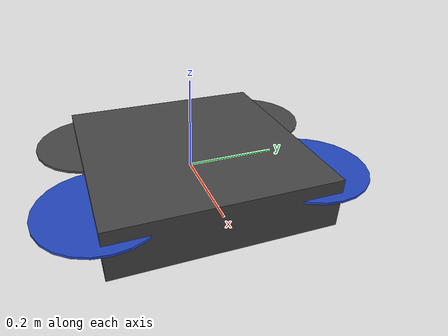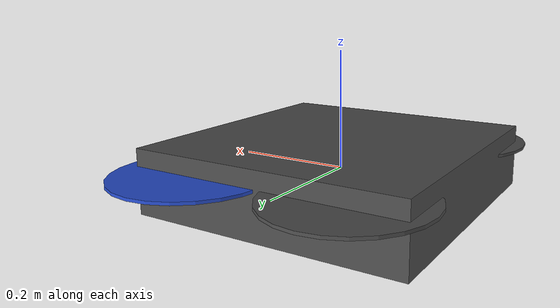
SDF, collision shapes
<?xml version='1.0'?>
<sdf version='1.6'>
  <model name='sd5-with-camera'>
    <link name='/imu_link'>
      <pose frame=''>0 0 0 0 -0 0</pose>
      <inertial>
        <pose frame=''>0 0 0 0 -0 0</pose>
        <mass>0.015</mass>
        <inertia>
          <ixx>1e-05</ixx>
          <ixy>0</ixy>
          <ixz>0</ixz>
          <iyy>1e-05</iyy>
          <iyz>0</iyz>
          <izz>1e-05</izz>
        </inertia>
      </inertial>
      <self_collide>0</self_collide>
      <kinematic>0</kinematic>
    </link>
    <link name='base_link'>
      <pose frame=''>0 0 0 0 -0 0</pose>
      <inertial>
        <pose frame=''>0 0 0 0 -0 0</pose>
        <mass>1.5</mass>
        <inertia>
          <ixx>0.0347563</ixx>
          <ixy>0</ixy>
          <ixz>0</ixz>
          <iyy>0.0458929</iyy>
          <iyz>0</iyz>
          <izz>0.0977</izz>
        </inertia>
      </inertial>
      <self_collide>0</self_collide>
      <kinematic>0</kinematic>
      <velocity_decay/>
      <visual name='base_link_inertia_visual'>
        <pose frame=''>0 0 0 0 -0 0</pose>
        <geometry>
          <mesh>
            <scale>1 1 1</scale>
            <uri>model://rotors_description/meshes/iris.stl</uri>
          </mesh>
        </geometry>
        <material>
          <script>
            <name>Gazebo/DarkGrey</name>
            <uri>file://media/materials/scripts/gazebo.material</uri>
          </script>
          <ambient>0.175 0.175 0.175 1</ambient>
          <diffuse>0.175 0.175 0.175 1</diffuse>
          <specular>0.175 0.175 0.175 1</specular>
          <emissive>0 0 0 1</emissive>
        </material>
        <transparency>0</transparency>
        <cast_shadows>1</cast_shadows>
      </visual>
      <collision name='base_link_inertia_collision'>
        <laser_retro>0</laser_retro>
        <max_contacts>10</max_contacts>
        <pose frame=''>0 0 0 0 -0 0</pose>
        <geometry>
          <box>
            <size>0.47 0.47 0.11</size>
          </box>
        </geometry>
        <surface>
          <friction>
            <ode>
              <mu>1</mu>
              <mu2>1</mu2>
              <fdir1>0 0 0</fdir1>
              <slip1>0</slip1>
              <slip2>0</slip2>
            </ode>
            <torsional>
              <coefficient>1</coefficient>
              <patch_radius>0</patch_radius>
              <surface_radius>0</surface_radius>
              <use_patch_radius>1</use_patch_radius>
              <ode>
                <slip>0</slip>
              </ode>
            </torsional>
          </friction>
          <bounce>
            <restitution_coefficient>0</restitution_coefficient>
            <threshold>1e+06</threshold>
          </bounce>
          <contact>
            <collide_without_contact>0</collide_without_contact>
            <collide_without_contact_bitmask>1</collide_without_contact_bitmask>
            <collide_bitmask>1</collide_bitmask>
            <ode>
              <soft_cfm>0</soft_cfm>
              <soft_erp>0.2</soft_erp>
              <kp>1e+13</kp>
              <kd>1</kd>
              <max_vel>0</max_vel>
              <min_depth>0.001</min_depth>
            </ode>
            <bullet>
              <split_impulse>1</split_impulse>
              <split_impulse_penetration_threshold>-0.01</split_impulse_penetration_threshold>
              <soft_cfm>0</soft_cfm>
              <soft_erp>0.2</soft_erp>
              <kp>1e+13</kp>
              <kd>1</kd>
            </bullet>
          </contact>
        </surface>
      </collision>
    </link>
    <link name='rotor_0'>
      <pose frame=''>0.13 -0.22 0.023 0 -0 0</pose>
      <inertial>
        <pose frame=''>0 0 0 0 -0 0</pose>
        <mass>0.005</mass>
        <inertia>
          <ixx>9.75e-07</ixx>
          <ixy>0</ixy>
          <ixz>0</ixz>
          <iyy>0.000273104</iyy>
          <iyz>0</iyz>
          <izz>0.000274004</izz>
        </inertia>
      </inertial>
      <self_collide>0</self_collide>
      <kinematic>0</kinematic>
      <velocity_decay/>
      <visual name='rotor_0_visual'>
        <pose frame=''>0 0 0 0 -0 0</pose>
        <geometry>
          <mesh>
            <scale>1 1 1</scale>
            <uri>model://rotors_description/meshes/iris_prop_ccw.dae</uri>
          </mesh>
        </geometry>
        <material>
          <script>
            <name>Gazebo/Blue</name>
            <uri>file://media/materials/scripts/gazebo.material</uri>
          </script>
          <ambient>0 0 1 1</ambient>
          <diffuse>0 0 1 1</diffuse>
          <specular>0.1 0.1 0.1 1</specular>
          <emissive>0 0 0 1</emissive>
        </material>
        <transparency>0</transparency>
        <cast_shadows>1</cast_shadows>
      </visual>
      <collision name='rotor_0_collision'>
        <laser_retro>0</laser_retro>
        <max_contacts>10</max_contacts>
        <pose frame=''>0 0 0 0 -0 0</pose>
        <geometry>
          <cylinder>
            <radius>0.128</radius>
            <length>0.005</length>
          </cylinder>
        </geometry>
        <surface>
          <friction>
            <ode>
              <mu>1</mu>
              <mu2>1</mu2>
              <fdir1>0 0 0</fdir1>
              <slip1>0</slip1>
              <slip2>0</slip2>
            </ode>
            <torsional>
              <coefficient>1</coefficient>
              <patch_radius>0</patch_radius>
              <surface_radius>0</surface_radius>
              <use_patch_radius>1</use_patch_radius>
              <ode>
                <slip>0</slip>
              </ode>
            </torsional>
          </friction>
          <bounce>
            <restitution_coefficient>0</restitution_coefficient>
            <threshold>1e+06</threshold>
          </bounce>
          <contact>
            <collide_without_contact>0</collide_without_contact>
            <collide_without_contact_bitmask>1</collide_without_contact_bitmask>
            <collide_bitmask>1</collide_bitmask>
            <ode>
              <soft_cfm>0</soft_cfm>
              <soft_erp>0.2</soft_erp>
              <kp>1e+13</kp>
              <kd>1</kd>
              <max_vel>0.01</max_vel>
              <min_depth>0</min_depth>
            </ode>
            <bullet>
              <split_impulse>1</split_impulse>
              <split_impulse_penetration_threshold>-0.01</split_impulse_penetration_threshold>
              <soft_cfm>0</soft_cfm>
              <soft_erp>0.2</soft_erp>
              <kp>1e+13</kp>
              <kd>1</kd>
            </bullet>
          </contact>
        </surface>
      </collision>
    </link>
    <link name='rotor_1'>
      <pose frame=''>-0.13 0.2 0.023 0 -0 0</pose>
      <inertial>
        <pose frame=''>0 0 0 0 -0 0</pose>
        <mass>0.005</mass>
        <inertia>
          <ixx>9.75e-07</ixx>
          <ixy>0</ixy>
          <ixz>0</ixz>
          <iyy>0.000273104</iyy>
          <iyz>0</iyz>
          <izz>0.000274004</izz>
        </inertia>
      </inertial>
      <self_collide>0</self_collide>
      <kinematic>0</kinematic>
      <velocity_decay/>
      <visual name='rotor_1_visual'>
        <pose frame=''>0 0 0 0 -0 0</pose>
        <geometry>
          <mesh>
            <scale>1 1 1</scale>
            <uri>model://rotors_description/meshes/iris_prop_ccw.dae</uri>
          </mesh>
        </geometry>
        <material>
          <script>
            <name>Gazebo/DarkGrey</name>
            <uri>file://media/materials/scripts/gazebo.material</uri>
          </script>
          <ambient>0.175 0.175 0.175 1</ambient>
          <diffuse>0.175 0.175 0.175 1</diffuse>
          <specular>0.175 0.175 0.175 1</specular>
          <emissive>0 0 0 1</emissive>
        </material>
        <transparency>0</transparency>
        <cast_shadows>1</cast_shadows>
      </visual>
      <collision name='rotor_1_collision'>
        <laser_retro>0</laser_retro>
        <max_contacts>10</max_contacts>
        <pose frame=''>0 0 0 0 -0 0</pose>
        <geometry>
          <cylinder>
            <radius>0.128</radius>
            <length>0.005</length>
          </cylinder>
        </geometry>
        <surface>
          <friction>
            <ode>
              <mu>1</mu>
              <mu2>1</mu2>
              <fdir1>0 0 0</fdir1>
              <slip1>0</slip1>
              <slip2>0</slip2>
            </ode>
            <torsional>
              <coefficient>1</coefficient>
              <patch_radius>0</patch_radius>
              <surface_radius>0</surface_radius>
              <use_patch_radius>1</use_patch_radius>
              <ode>
                <slip>0</slip>
              </ode>
            </torsional>
          </friction>
          <bounce>
            <restitution_coefficient>0</restitution_coefficient>
            <threshold>1e+06</threshold>
          </bounce>
          <contact>
            <collide_without_contact>0</collide_without_contact>
            <collide_without_contact_bitmask>1</collide_without_contact_bitmask>
            <collide_bitmask>1</collide_bitmask>
            <ode>
              <soft_cfm>0</soft_cfm>
              <soft_erp>0.2</soft_erp>
              <kp>1e+13</kp>
              <kd>1</kd>
              <max_vel>0.01</max_vel>
              <min_depth>0</min_depth>
            </ode>
            <bullet>
              <split_impulse>1</split_impulse>
              <split_impulse_penetration_threshold>-0.01</split_impulse_penetration_threshold>
              <soft_cfm>0</soft_cfm>
              <soft_erp>0.2</soft_erp>
              <kp>1e+13</kp>
              <kd>1</kd>
            </bullet>
          </contact>
        </surface>
      </collision>
    </link>
    <link name='rotor_2'>
      <pose frame=''>0.13 0.22 0.023 0 -0 0</pose>
      <inertial>
        <pose frame=''>0 0 0 0 -0 0</pose>
        <mass>0.005</mass>
        <inertia>
          <ixx>9.75e-07</ixx>
          <ixy>0</ixy>
          <ixz>0</ixz>
          <iyy>0.000273104</iyy>
          <iyz>0</iyz>
          <izz>0.000274004</izz>
        </inertia>
      </inertial>
      <self_collide>0</self_collide>
      <kinematic>0</kinematic>
      <velocity_decay/>
      <visual name='rotor_2_visual'>
        <pose frame=''>0 0 0 0 -0 0</pose>
        <geometry>
          <mesh>
            <scale>1 1 1</scale>
            <uri>model://rotors_description/meshes/iris_prop_cw.dae</uri>
          </mesh>
        </geometry>
        <material>
          <script>
            <name>Gazebo/Blue</name>
            <uri>file://media/materials/scripts/gazebo.material</uri>
          </script>
          <ambient>0 0 1 1</ambient>
          <diffuse>0 0 1 1</diffuse>
          <specular>0.1 0.1 0.1 1</specular>
          <emissive>0 0 0 1</emissive>
        </material>
        <transparency>0</transparency>
        <cast_shadows>1</cast_shadows>
      </visual>
      <collision name='rotor_2_collision'>
        <laser_retro>0</laser_retro>
        <max_contacts>10</max_contacts>
        <pose frame=''>0 0 0 0 -0 0</pose>
        <geometry>
          <cylinder>
            <radius>0.128</radius>
            <length>0.005</length>
          </cylinder>
        </geometry>
        <surface>
          <friction>
            <ode>
              <mu>1</mu>
              <mu2>1</mu2>
              <fdir1>0 0 0</fdir1>
              <slip1>0</slip1>
              <slip2>0</slip2>
            </ode>
            <torsional>
              <coefficient>1</coefficient>
              <patch_radius>0</patch_radius>
              <surface_radius>0</surface_radius>
              <use_patch_radius>1</use_patch_radius>
              <ode>
                <slip>0</slip>
              </ode>
            </torsional>
          </friction>
          <bounce>
            <restitution_coefficient>0</restitution_coefficient>
            <threshold>1e+06</threshold>
          </bounce>
          <contact>
            <collide_without_contact>0</collide_without_contact>
            <collide_without_contact_bitmask>1</collide_without_contact_bitmask>
            <collide_bitmask>1</collide_bitmask>
            <ode>
              <soft_cfm>0</soft_cfm>
              <soft_erp>0.2</soft_erp>
              <kp>1e+13</kp>
              <kd>1</kd>
              <max_vel>0.01</max_vel>
              <min_depth>0</min_depth>
            </ode>
            <bullet>
              <split_impulse>1</split_impulse>
              <split_impulse_penetration_threshold>-0.01</split_impulse_penetration_threshold>
              <soft_cfm>0</soft_cfm>
              <soft_erp>0.2</soft_erp>
              <kp>1e+13</kp>
              <kd>1</kd>
            </bullet>
          </contact>
        </surface>
      </collision>
    </link>
    <link name='rotor_3'>
      <pose frame=''>-0.13 -0.2 0.023 0 -0 0</pose>
      <inertial>
        <pose frame=''>0 0 0 0 -0 0</pose>
        <mass>0.005</mass>
        <inertia>
          <ixx>9.75e-07</ixx>
          <ixy>0</ixy>
          <ixz>0</ixz>
          <iyy>0.000273104</iyy>
          <iyz>0</iyz>
          <izz>0.000274004</izz>
        </inertia>
      </inertial>
      <self_collide>0</self_collide>
      <kinematic>0</kinematic>
      <velocity_decay/>
      <visual name='rotor_3_visual'>
        <pose frame=''>0 0 0 0 -0 0</pose>
        <geometry>
          <mesh>
            <scale>1 1 1</scale>
            <uri>model://rotors_description/meshes/iris_prop_cw.dae</uri>
          </mesh>
        </geometry>
        <material>
          <script>
            <name>Gazebo/DarkGrey</name>
            <uri>file://media/materials/scripts/gazebo.material</uri>
          </script>
          <ambient>0.175 0.175 0.175 1</ambient>
          <diffuse>0.175 0.175 0.175 1</diffuse>
          <specular>0.175 0.175 0.175 1</specular>
          <emissive>0 0 0 1</emissive>
        </material>
        <transparency>0</transparency>
        <cast_shadows>1</cast_shadows>
      </visual>
      <collision name='rotor_3_collision'>
        <laser_retro>0</laser_retro>
        <max_contacts>10</max_contacts>
        <pose frame=''>0 0 0 0 -0 0</pose>
        <geometry>
          <cylinder>
            <radius>0.128</radius>
            <length>0.005</length>
          </cylinder>
        </geometry>
        <surface>
          <friction>
            <ode>
              <mu>1</mu>
              <mu2>1</mu2>
              <fdir1>0 0 0</fdir1>
              <slip1>0</slip1>
              <slip2>0</slip2>
            </ode>
            <torsional>
              <coefficient>1</coefficient>
              <patch_radius>0</patch_radius>
              <surface_radius>0</surface_radius>
              <use_patch_radius>1</use_patch_radius>
              <ode>
                <slip>0</slip>
              </ode>
            </torsional>
          </friction>
          <bounce>
            <restitution_coefficient>0</restitution_coefficient>
            <threshold>1e+06</threshold>
          </bounce>
          <contact>
            <collide_without_contact>0</collide_without_contact>
            <collide_without_contact_bitmask>1</collide_without_contact_bitmask>
            <collide_bitmask>1</collide_bitmask>
            <ode>
              <soft_cfm>0</soft_cfm>
              <soft_erp>0.2</soft_erp>
              <kp>1e+13</kp>
              <kd>1</kd>
              <max_vel>0.01</max_vel>
              <min_depth>0</min_depth>
            </ode>
            <bullet>
              <split_impulse>1</split_impulse>
              <split_impulse_penetration_threshold>-0.01</split_impulse_penetration_threshold>
              <soft_cfm>0</soft_cfm>
              <soft_erp>0.2</soft_erp>
              <kp>1e+13</kp>
              <kd>1</kd>
            </bullet>
          </contact>
        </surface>
      </collision>
    </link>
    <model name='camera-small'>
      <link name='link'>
        <pose frame=''>0 0 0 0 -0 0</pose>
        <inertial>
          <mass>3.8346e-08</mass>
          <inertia>
            <ixx>3.00887e-12</ixx>
            <iyy>3.00881e-12</iyy>
            <izz>3.00881e-12</izz>
            <ixy>0</ixy>
            <ixz>0</ixz>
            <iyz>0</iyz>
          </inertia>
          <pose frame=''>0 0 0 0 -0 0</pose>
        </inertial>
        <self_collide>0</self_collide>
        <kinematic>0</kinematic>
        <sensor name='camera' type='camera'>
          <camera name='__default__'>
            <horizontal_fov>1.047</horizontal_fov>
            <image>
              <width>320</width>
              <height>240</height>
            </image>
            <clip>
              <near>0.1</near>
              <far>100</far>
            </clip>
          </camera>
          <always_on>1</always_on>
          <update_rate>30</update_rate>
          <visualize>1</visualize>
        </sensor>
        <visual name='visual'>
          <geometry>
            <box>
              <size>0.021697 0.021698 0.021698</size>
            </box>
          </geometry>
          <pose frame=''>0 0 0 0 -0 0</pose>
          <cast_shadows>1</cast_shadows>
          <transparency>0</transparency>
        </visual>
        <collision name='collision'>
          <laser_retro>0</laser_retro>
          <max_contacts>10</max_contacts>
          <pose frame=''>0 0 0 0 -0 0</pose>
          <geometry>
            <box>
              <size>0.021697 0.021698 0.021698</size>
            </box>
          </geometry>
          <surface>
            <friction>
              <ode>
                <mu>1</mu>
                <mu2>1</mu2>
                <fdir1>0 0 0</fdir1>
                <slip1>0</slip1>
                <slip2>0</slip2>
              </ode>
              <torsional>
                <coefficient>1</coefficient>
                <patch_radius>0</patch_radius>
                <surface_radius>0</surface_radius>
                <use_patch_radius>1</use_patch_radius>
                <ode>
                  <slip>0</slip>
                </ode>
              </torsional>
            </friction>
            <bounce>
              <restitution_coefficient>0</restitution_coefficient>
              <threshold>1e+06</threshold>
            </bounce>
            <contact>
              <collide_without_contact>0</collide_without_contact>
              <collide_without_contact_bitmask>1</collide_without_contact_bitmask>
              <collide_bitmask>1</collide_bitmask>
              <ode>
                <soft_cfm>0</soft_cfm>
                <soft_erp>0.2</soft_erp>
                <kp>1e+13</kp>
                <kd>1</kd>
                <max_vel>0.01</max_vel>
                <min_depth>0</min_depth>
              </ode>
              <bullet>
                <split_impulse>1</split_impulse>
                <split_impulse_penetration_threshold>-0.01</split_impulse_penetration_threshold>
                <soft_cfm>0</soft_cfm>
                <soft_erp>0.2</soft_erp>
                <kp>1e+13</kp>
                <kd>1</kd>
              </bullet>
            </contact>
          </surface>
        </collision>
      </link>
      <static>0</static>
      <allow_auto_disable>1</allow_auto_disable>
      <pose frame=''>0.063935 -0.027179 -0.02862 0 -0 0</pose>
    </model>
    <model name='camera-small_0'>
      <link name='link'>
        <pose frame=''>0 0 0 0 -0 0</pose>
        <inertial>
          <mass>3.8346e-08</mass>
          <inertia>
            <ixx>3.00887e-12</ixx>
            <iyy>3.00881e-12</iyy>
            <izz>3.00881e-12</izz>
            <ixy>0</ixy>
            <ixz>0</ixz>
            <iyz>0</iyz>
          </inertia>
          <pose frame=''>0 0 0 0 -0 0</pose>
        </inertial>
        <self_collide>0</self_collide>
        <kinematic>0</kinematic>
        <sensor name='camera' type='camera'>
          <camera name='__default__'>
            <horizontal_fov>1.047</horizontal_fov>
            <image>
              <width>320</width>
              <height>240</height>
            </image>
            <clip>
              <near>0.1</near>
              <far>100</far>
            </clip>
          </camera>
          <always_on>1</always_on>
          <update_rate>30</update_rate>
          <visualize>1</visualize>
        </sensor>
        <visual name='visual'>
          <geometry>
            <box>
              <size>0.021697 0.021698 0.021698</size>
            </box>
          </geometry>
          <pose frame=''>0 0 0 0 -0 0</pose>
          <cast_shadows>1</cast_shadows>
          <transparency>0</transparency>
        </visual>
        <collision name='collision'>
          <laser_retro>0</laser_retro>
          <max_contacts>10</max_contacts>
          <pose frame=''>0 0 0 0 -0 0</pose>
          <geometry>
            <box>
              <size>0.021697 0.021698 0.021698</size>
            </box>
          </geometry>
          <surface>
            <friction>
              <ode>
                <mu>1</mu>
                <mu2>1</mu2>
                <fdir1>0 0 0</fdir1>
                <slip1>0</slip1>
                <slip2>0</slip2>
              </ode>
              <torsional>
                <coefficient>1</coefficient>
                <patch_radius>0</patch_radius>
                <surface_radius>0</surface_radius>
                <use_patch_radius>1</use_patch_radius>
                <ode>
                  <slip>0</slip>
                </ode>
              </torsional>
            </friction>
            <bounce>
              <restitution_coefficient>0</restitution_coefficient>
              <threshold>1e+06</threshold>
            </bounce>
            <contact>
              <collide_without_contact>0</collide_without_contact>
              <collide_without_contact_bitmask>1</collide_without_contact_bitmask>
              <collide_bitmask>1</collide_bitmask>
              <ode>
                <soft_cfm>0</soft_cfm>
                <soft_erp>0.2</soft_erp>
                <kp>1e+13</kp>
                <kd>1</kd>
                <max_vel>0.01</max_vel>
                <min_depth>0</min_depth>
              </ode>
              <bullet>
                <split_impulse>1</split_impulse>
                <split_impulse_penetration_threshold>-0.01</split_impulse_penetration_threshold>
                <soft_cfm>0</soft_cfm>
                <soft_erp>0.2</soft_erp>
                <kp>1e+13</kp>
                <kd>1</kd>
              </bullet>
            </contact>
          </surface>
        </collision>
      </link>
      <static>0</static>
      <allow_auto_disable>1</allow_auto_disable>
      <pose frame=''>0.062518 0.031227 -0.029688 0 -0 0</pose>
    </model>
    <joint name='/imu_joint' type='revolute'>
      <parent>base_link</parent>
      <child>/imu_link</child>
      <pose frame=''>0 0 0 0 -0 0</pose>
      <axis>
        <xyz>1 0 0</xyz>
        <use_parent_model_frame>1</use_parent_model_frame>
        <limit>
          <lower>0</lower>
          <upper>0</upper>
          <effort>0</effort>
          <velocity>0</velocity>
        </limit>
        <dynamics>
          <spring_reference>0</spring_reference>
          <spring_stiffness>0</spring_stiffness>
          <damping>0</damping>
          <friction>0</friction>
        </dynamics>
      </axis>
      <physics>
        <ode>
          <limit>
            <cfm>0</cfm>
            <erp>0.2</erp>
          </limit>
          <suspension>
            <cfm>0</cfm>
            <erp>0.2</erp>
          </suspension>
        </ode>
      </physics>
    </joint>
    <joint name='link_JOINT_0' type='fixed'>
      <parent>camera-small::link</parent>
      <child>base_link</child>
      <pose frame=''>0 0 0 0 -0 0</pose>
      <physics>
        <ode>
          <limit>
            <cfm>0</cfm>
            <erp>0.2</erp>
          </limit>
          <suspension>
            <cfm>0</cfm>
            <erp>0.2</erp>
          </suspension>
        </ode>
      </physics>
    </joint>
    <joint name='link_JOINT_1' type='fixed'>
      <parent>camera-small_0::link</parent>
      <child>base_link</child>
      <pose frame=''>0 0 0 0 -0 0</pose>
      <physics>
        <ode>
          <limit>
            <cfm>0</cfm>
            <erp>0.2</erp>
          </limit>
          <suspension>
            <cfm>0</cfm>
            <erp>0.2</erp>
          </suspension>
        </ode>
      </physics>
    </joint>
    <joint name='rotor_0_joint' type='revolute'>
      <parent>base_link</parent>
      <child>rotor_0</child>
      <pose frame=''>0 0 0 0 -0 0</pose>
      <axis>
        <xyz>0 0 1</xyz>
        <use_parent_model_frame>1</use_parent_model_frame>
        <limit>
          <lower>-1e+16</lower>
          <upper>1e+16</upper>
          <effort>-1</effort>
          <velocity>-1</velocity>
        </limit>
        <dynamics>
          <spring_reference>0</spring_reference>
          <spring_stiffness>0</spring_stiffness>
          <damping>0</damping>
          <friction>0</friction>
        </dynamics>
      </axis>
      <physics>
        <ode>
          <limit>
            <cfm>0</cfm>
            <erp>0.2</erp>
          </limit>
          <suspension>
            <cfm>0</cfm>
            <erp>0.2</erp>
          </suspension>
        </ode>
      </physics>
    </joint>
    <joint name='rotor_1_joint' type='revolute'>
      <parent>base_link</parent>
      <child>rotor_1</child>
      <pose frame=''>0 0 0 0 -0 0</pose>
      <axis>
        <xyz>0 0 1</xyz>
        <use_parent_model_frame>1</use_parent_model_frame>
        <limit>
          <lower>-1e+16</lower>
          <upper>1e+16</upper>
          <effort>-1</effort>
          <velocity>-1</velocity>
        </limit>
        <dynamics>
          <spring_reference>0</spring_reference>
          <spring_stiffness>0</spring_stiffness>
          <damping>0</damping>
          <friction>0</friction>
        </dynamics>
      </axis>
      <physics>
        <ode>
          <limit>
            <cfm>0</cfm>
            <erp>0.2</erp>
          </limit>
          <suspension>
            <cfm>0</cfm>
            <erp>0.2</erp>
          </suspension>
        </ode>
      </physics>
    </joint>
    <joint name='rotor_2_joint' type='revolute'>
      <parent>base_link</parent>
      <child>rotor_2</child>
      <pose frame=''>0 0 0 0 -0 0</pose>
      <axis>
        <xyz>0 0 1</xyz>
        <use_parent_model_frame>1</use_parent_model_frame>
        <limit>
          <lower>-1e+16</lower>
          <upper>1e+16</upper>
          <effort>-1</effort>
          <velocity>-1</velocity>
        </limit>
        <dynamics>
          <spring_reference>0</spring_reference>
          <spring_stiffness>0</spring_stiffness>
          <damping>0</damping>
          <friction>0</friction>
        </dynamics>
      </axis>
      <physics>
        <ode>
          <limit>
            <cfm>0</cfm>
            <erp>0.2</erp>
          </limit>
          <suspension>
            <cfm>0</cfm>
            <erp>0.2</erp>
          </suspension>
        </ode>
      </physics>
    </joint>
    <joint name='rotor_3_joint' type='revolute'>
      <parent>base_link</parent>
      <child>rotor_3</child>
      <pose frame=''>0 0 0 0 -0 0</pose>
      <axis>
        <xyz>0 0 1</xyz>
        <use_parent_model_frame>1</use_parent_model_frame>
        <limit>
          <lower>-1e+16</lower>
          <upper>1e+16</upper>
          <effort>-1</effort>
          <velocity>-1</velocity>
        </limit>
        <dynamics>
          <spring_reference>0</spring_reference>
          <spring_stiffness>0</spring_stiffness>
          <damping>0</damping>
          <friction>0</friction>
        </dynamics>
      </axis>
      <physics>
        <ode>
          <limit>
            <cfm>0</cfm>
            <erp>0.2</erp>
          </limit>
          <suspension>
            <cfm>0</cfm>
            <erp>0.2</erp>
          </suspension>
        </ode>
      </physics>
    </joint>
    <static>0</static>
    <allow_auto_disable>1</allow_auto_disable>
    <plugin name='back_left_motor_model' filename='librotors_gazebo_motor_model.so'>
      <robotNamespace/>
      <jointName>rotor_1_joint</jointName>
      <linkName>rotor_1</linkName>
      <turningDirection>ccw</turningDirection>
      <timeConstantUp>0.0125</timeConstantUp>
      <timeConstantDown>0.025</timeConstantDown>
      <maxRotVelocity>1100</maxRotVelocity>
      <motorConstant>8.54858e-06</motorConstant>
      <momentConstant>0.06</momentConstant>
      <commandSubTopic>/gazebo/command/motor_speed</commandSubTopic>
      <motorNumber>1</motorNumber>
      <rotorDragCoefficient>0.000806428</rotorDragCoefficient>
      <rollingMomentCoefficient>1e-06</rollingMomentCoefficient>
      <motorSpeedPubTopic>/motor_speed/1</motorSpeedPubTopic>
      <rotorVelocitySlowdownSim>10</rotorVelocitySlowdownSim>
    </plugin>
    <plugin name='back_right_motor_model' filename='librotors_gazebo_motor_model.so'>
      <robotNamespace/>
      <jointName>rotor_3_joint</jointName>
      <linkName>rotor_3</linkName>
      <turningDirection>cw</turningDirection>
      <timeConstantUp>0.0125</timeConstantUp>
      <timeConstantDown>0.025</timeConstantDown>
      <maxRotVelocity>1100</maxRotVelocity>
      <motorConstant>8.54858e-06</motorConstant>
      <momentConstant>0.06</momentConstant>
      <commandSubTopic>/gazebo/command/motor_speed</commandSubTopic>
      <motorNumber>3</motorNumber>
      <rotorDragCoefficient>0.000806428</rotorDragCoefficient>
      <rollingMomentCoefficient>1e-06</rollingMomentCoefficient>
      <motorSpeedPubTopic>/motor_speed/3</motorSpeedPubTopic>
      <rotorVelocitySlowdownSim>10</rotorVelocitySlowdownSim>
    </plugin>
    <plugin name='front_left_motor_model' filename='librotors_gazebo_motor_model.so'>
      <robotNamespace/>
      <jointName>rotor_2_joint</jointName>
      <linkName>rotor_2</linkName>
      <turningDirection>cw</turningDirection>
      <timeConstantUp>0.0125</timeConstantUp>
      <timeConstantDown>0.025</timeConstantDown>
      <maxRotVelocity>1100</maxRotVelocity>
      <motorConstant>8.54858e-06</motorConstant>
      <momentConstant>0.06</momentConstant>
      <commandSubTopic>/gazebo/command/motor_speed</commandSubTopic>
      <motorNumber>2</motorNumber>
      <rotorDragCoefficient>0.000806428</rotorDragCoefficient>
      <rollingMomentCoefficient>1e-06</rollingMomentCoefficient>
      <motorSpeedPubTopic>/motor_speed/2</motorSpeedPubTopic>
      <rotorVelocitySlowdownSim>10</rotorVelocitySlowdownSim>
    </plugin>
    <plugin name='front_right_motor_model' filename='librotors_gazebo_motor_model.so'>
      <robotNamespace/>
      <jointName>rotor_0_joint</jointName>
      <linkName>rotor_0</linkName>
      <turningDirection>ccw</turningDirection>
      <timeConstantUp>0.0125</timeConstantUp>
      <timeConstantDown>0.025</timeConstantDown>
      <maxRotVelocity>1100</maxRotVelocity>
      <motorConstant>8.54858e-06</motorConstant>
      <momentConstant>0.06</momentConstant>
      <commandSubTopic>/gazebo/command/motor_speed</commandSubTopic>
      <motorNumber>0</motorNumber>
      <rotorDragCoefficient>0.000806428</rotorDragCoefficient>
      <rollingMomentCoefficient>1e-06</rollingMomentCoefficient>
      <motorSpeedPubTopic>/motor_speed/0</motorSpeedPubTopic>
      <rotorVelocitySlowdownSim>10</rotorVelocitySlowdownSim>
    </plugin>
    <plugin name='gps_plugin' filename='libgazebo_gps_plugin.so'>
      <robotNamespace/>
      <gpsNoise>true</gpsNoise>
    </plugin>
    <plugin name='mavlink_interface' filename='librotors_gazebo_mavlink_interface.so'>
      <robotNamespace/>
      <imuSubTopic>/imu</imuSubTopic>
      <gpsSubTopic>/gps</gpsSubTopic>
      <mavlink_addr>INADDR_ANY</mavlink_addr>
      <mavlink_udp_port>14560</mavlink_udp_port>
      <motorSpeedCommandPubTopic>/gazebo/command/motor_speed</motorSpeedCommandPubTopic>
      <control_channels>
        <channel name='rotor1'>
          <input_index>0</input_index>
          <input_offset>0</input_offset>
          <input_scaling>1000</input_scaling>
          <zero_position_disarmed>0</zero_position_disarmed>
          <zero_position_armed>100</zero_position_armed>
          <joint_control_type>velocity</joint_control_type>
        </channel>
        <channel name='rotor2'>
          <input_index>1</input_index>
          <input_offset>0</input_offset>
          <input_scaling>1000</input_scaling>
          <zero_position_disarmed>0</zero_position_disarmed>
          <zero_position_armed>100</zero_position_armed>
          <joint_control_type>velocity</joint_control_type>
        </channel>
        <channel name='rotor3'>
          <input_index>2</input_index>
          <input_offset>0</input_offset>
          <input_scaling>1000</input_scaling>
          <zero_position_disarmed>0</zero_position_disarmed>
          <zero_position_armed>100</zero_position_armed>
          <joint_control_type>velocity</joint_control_type>
        </channel>
        <channel name='rotor4'>
          <input_index>3</input_index>
          <input_offset>0</input_offset>
          <input_scaling>1000</input_scaling>
          <zero_position_disarmed>0</zero_position_disarmed>
          <zero_position_armed>100</zero_position_armed>
          <joint_control_type>velocity</joint_control_type>
        </channel>
        <channel name='rotor5'>
          <input_index>4</input_index>
          <input_offset>1</input_offset>
          <input_scaling>324.6</input_scaling>
          <zero_position_disarmed>0</zero_position_disarmed>
          <zero_position_armed>0</zero_position_armed>
          <joint_control_type>velocity</joint_control_type>
          <joint_control_pid>
            <p>0.1</p>
            <i>0</i>
            <d>0</d>
            <iMax>0.0</iMax>
            <iMin>0.0</iMin>
            <cmdMax>2</cmdMax>
            <cmdMin>-2</cmdMin>
          </joint_control_pid>
          <joint_name>zephyr_delta_wing::propeller_joint</joint_name>
        </channel>
        <channel name='rotor6'>
          <input_index>5</input_index>
          <input_offset>0</input_offset>
          <input_scaling>0.524</input_scaling>
          <zero_position_disarmed>0</zero_position_disarmed>
          <zero_position_armed>0</zero_position_armed>
          <joint_control_type>position</joint_control_type>
          <joint_name>zephyr_delta_wing::flap_left_joint</joint_name>
          <joint_control_pid>
            <p>10.0</p>
            <i>0</i>
            <d>0</d>
            <iMax>0</iMax>
            <iMin>0</iMin>
            <cmdMax>20</cmdMax>
            <cmdMin>-20</cmdMin>
          </joint_control_pid>
        </channel>
        <channel name='rotor7'>
          <input_index>6</input_index>
          <input_offset>0</input_offset>
          <input_scaling>0.524</input_scaling>
          <zero_position_disarmed>0</zero_position_disarmed>
          <zero_position_armed>0</zero_position_armed>
          <joint_control_type>position</joint_control_type>
          <joint_name>zephyr_delta_wing::flap_right_joint</joint_name>
          <joint_control_pid>
            <p>10.0</p>
            <i>0</i>
            <d>0</d>
            <iMax>0</iMax>
            <iMin>0</iMin>
            <cmdMax>20</cmdMax>
            <cmdMin>-20</cmdMin>
          </joint_control_pid>
        </channel>
        <channel name='rotor8'>
          <input_index>7</input_index>
          <input_offset>0</input_offset>
          <input_scaling>0.524</input_scaling>
          <zero_position_disarmed>0</zero_position_disarmed>
          <zero_position_armed>0</zero_position_armed>
          <joint_control_type>position</joint_control_type>
        </channel>
      </control_channels>
    </plugin>
    <plugin name='rosbag' filename='librotors_gazebo_multirotor_base_plugin.so'>
      <robotNamespace/>
      <linkName>base_link</linkName>
      <rotorVelocitySlowdownSim>10</rotorVelocitySlowdownSim>
    </plugin>
    <plugin name='rotors_gazebo_imu_plugin' filename='librotors_gazebo_imu_plugin.so'>
      <robotNamespace/>
      <linkName>/imu_link</linkName>
      <imuTopic>/imu</imuTopic>
      <gyroscopeNoiseDensity>0.0003394</gyroscopeNoiseDensity>
      <gyroscopeRandomWalk>3.8785e-05</gyroscopeRandomWalk>
      <gyroscopeBiasCorrelationTime>1000.0</gyroscopeBiasCorrelationTime>
      <gyroscopeTurnOnBiasSigma>0.0087</gyroscopeTurnOnBiasSigma>
      <accelerometerNoiseDensity>0.004</accelerometerNoiseDensity>
      <accelerometerRandomWalk>0.006</accelerometerRandomWalk>
      <accelerometerBiasCorrelationTime>300.0</accelerometerBiasCorrelationTime>
      <accelerometerTurnOnBiasSigma>0.196</accelerometerTurnOnBiasSigma>
    </plugin>
  </model>
</sdf>
